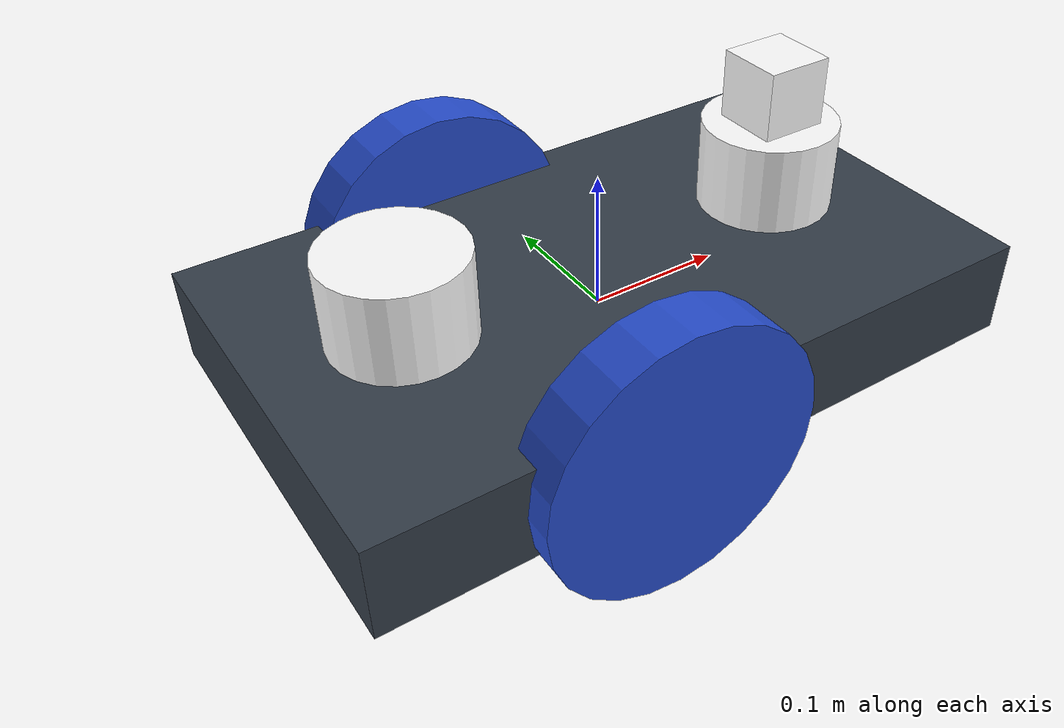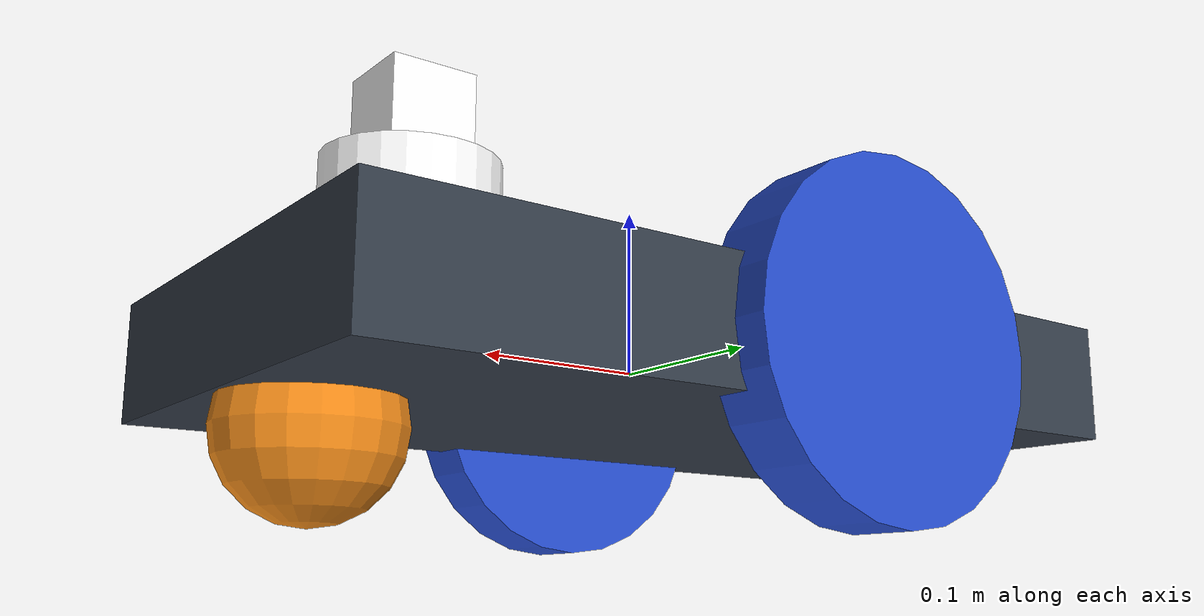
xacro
<?xml version="1.0" ?>
<robot name="two_laser_robot" xmlns:xacro="http://www.ros.org/wiki/xacro">

  <xacro:include filename="$(find two_laser_one_kinect_robot)/urdf/materials.xacro" />
  <xacro:include filename="$(find two_laser_one_kinect_robot)/urdf/two_laser_one_kinect_robot.gazebo" />
  <xacro:include filename="$(find two_laser_one_kinect_robot)/urdf/macros.xacro" />

  <link name="link_chassis">
    <!-- pose and inertial -->
    <pose>0 0 0.1 0 0 0</pose>
    <inertial>
      <mass value="5"/>
      <origin rpy="0 0 0" xyz="0 0 0.1"/>
      <inertia ixx="0.0395416666667" ixy="0" ixz="0" iyy="0.106208333333" iyz="0" izz="0.106208333333"/>
    </inertial>
    <!-- body -->
    <collision name="collision_chassis">
      <geometry>
        <box size="0.5 0.3 0.07"/>
      </geometry>
    </collision>
    <visual>
      <origin rpy="0 0 0" xyz="0 0 0"/>
      <geometry>
        <box size="0.5 0.3 0.07"/>
      </geometry>
      <material name="blue"/>
    </visual>
    <!-- caster front -->
    <collision name="caster_front_collision">
      <origin rpy=" 0 0 0" xyz="0.35 0 -0.05"/>
      <geometry>
        <sphere radius="0.05"/>
      </geometry>
      <surface>
        <friction>
          <ode>
            <mu>0</mu>
            <mu2>0</mu2>
            <slip1>1.0</slip1>
            <slip2>1.0</slip2>
          </ode>
        </friction>
      </surface>
    </collision>
    <visual name="caster_front_visual">
      <origin rpy=" 0 0 0" xyz="0.2 0 -0.05"/>
      <geometry>
        <sphere radius="0.05"/>
      </geometry>
    </visual>
  </link>

  <link name="kinect_sensor">
    <inertial>
        <origin xyz="0 0 0" rpy="0 0 0" />
        <mass value="1" />
        <xacro:cube_inertia mass="1" w="0.05" h="0.05" d="0.05" />
    </inertial>

    <visual>
        <origin xyz="0 0 0" rpy="0 0 0" />
        <geometry>
          <box size="0.05 0.05 0.05"/>
        </geometry>
        <material name="white" />
    </visual>

    <collision>
        <origin xyz="0 0 0" rpy="0 0 0"/>
        <geometry>
          <box size="0.05 0.05 0.05"/>
        </geometry>
    </collision>
  </link>

  <joint name="joint_kinect_sensor" type="fixed">
    <origin xyz="0.15 0 0.125" rpy="0 0 0"/>
    <parent link="link_chassis"/>
    <child link="kinect_sensor"/>
  </joint>

  <link name="laser1">
    <inertial>
        <origin xyz="0 0 0" rpy="0 0 0" />
        <mass value="1" />
        <xacro:cylinder_inertia mass="1" r="0.05" l="0.1" />
    </inertial>

    <visual>
        <origin xyz="0 0 0" rpy="0 0 0" />
        <geometry>
        <cylinder radius="0.05" length="0.1"/>
        </geometry>
        <material name="white" />
    </visual>

    <collision>
        <origin xyz="0 0 0" rpy="0 0 0"/>
        <geometry>
        <cylinder radius="0.05" length="0.1"/>
        </geometry>
    </collision>
  </link>

  <link name="laser2">
    <inertial>
        <origin xyz="0 0 0" rpy="0 0 0" />
        <mass value="1" />
        <xacro:cylinder_inertia mass="1" r="0.05" l="0.1" />
    </inertial>

    <visual>
        <origin xyz="0 0 0" rpy="0 0 0" />
        <geometry>
        <cylinder radius="0.05" length="0.1"/>
        </geometry>
        <material name="white" />
    </visual>

    <collision>
        <origin xyz="0 0 0" rpy="0 0 0"/>
        <geometry>
        <cylinder radius="0.05" length="0.1"/>
        </geometry>
    </collision>
  </link>

  <joint name="joint_sensor_laser1" type="fixed">
    <origin xyz="0.15 0 0.05" rpy="0 0 0"/>
    <parent link="link_chassis"/>
    <child link="laser1"/>
  </joint>

  <joint name="joint_sensor_laser2" type="fixed">
    <origin xyz="-0.15 0 0.05" rpy="0 0 3.1415"/>
    <parent link="link_chassis"/>
    <child link="laser2"/>
  </joint>

  <xacro:link_wheel name="link_right_wheel" />
  <xacro:joint_wheel name="joint_right_wheel" child="link_right_wheel" origin_xyz="-0.05 0.15 0" />

  <xacro:link_wheel name="link_left_wheel" />
  <xacro:joint_wheel name="joint_left_wheel" child="link_left_wheel" origin_xyz="-0.05 -0.15 0" />
</robot>

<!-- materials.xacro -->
<robot>
  <material name="black">
    <color rgba="0.0 0.0 0.0 1.0"/>
  </material>
  <material name="blue">
    <color rgba="0.203125 0.23828125 0.28515625 1.0"/>
  </material>
  <material name="green">
    <color rgba="0.0 0.8 0.0 1.0"/>
  </material>
  <material name="grey">
    <color rgba="0.2 0.2 0.2 1.0"/>
  </material>
  <material name="orange">
    <color rgba="1.0 0.423529411765 0.0392156862745 1.0"/>
  </material>
  <material name="brown">
    <color rgba="0.870588235294 0.811764705882 0.764705882353 1.0"/>
  </material>
  <material name="red">
    <color rgba="0.80078125 0.12890625 0.1328125 1.0"/>
  </material>
  <material name="white">
    <color rgba="1.0 1.0 1.0 1.0"/>
  </material>
</robot>

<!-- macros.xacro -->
<robot>
    <macro name="link_wheel" params="name">
        <link name="${name}">
            <inertial>
              <mass value="0.2"/>
              <origin rpy="0 1.5707 1.5707" xyz="0 0 0"/>
              <inertia ixx="0.000526666666667" ixy="0" ixz="0" iyy="0.000526666666667" iyz="0" izz="0.001"/>
            </inertial>
            <collision name="link_right_wheel_collision">
              <origin rpy="0 1.5707 1.5707" xyz="0 0 0"/>
              <geometry>
                <cylinder length="0.04" radius="0.1"/>
              </geometry>
            </collision>
            <visual name="${name}_visual">
              <origin rpy="0 1.5707 1.5707" xyz="0 0 0"/>
              <geometry>
                <cylinder length="0.04" radius="0.1"/>
              </geometry>
            </visual>
        </link>
    </macro>

    <macro name="joint_wheel" params="name child origin_xyz">
      <joint name="${name}" type="continuous">
        <origin rpy="0 0 0" xyz="${origin_xyz}"/>
        <child link="${child}"/>
        <parent link="link_chassis"/>
        <axis rpy="0 0 0" xyz="0 1 0"/>
        <limit effort="10000" velocity="1000"/>
        <joint_properties damping="1.0" friction="1.0"/>
      </joint>
    </macro>

    <macro name="cylinder_inertia" params="mass r l">
      <inertia  ixx="${mass*(3*r*r+l*l)/12}" ixy = "0" ixz = "0"
            iyy="${mass*(3*r*r+l*l)/12}" iyz = "0"
            izz="${mass*(r*r)/2}" />
    </macro>

</robot>
